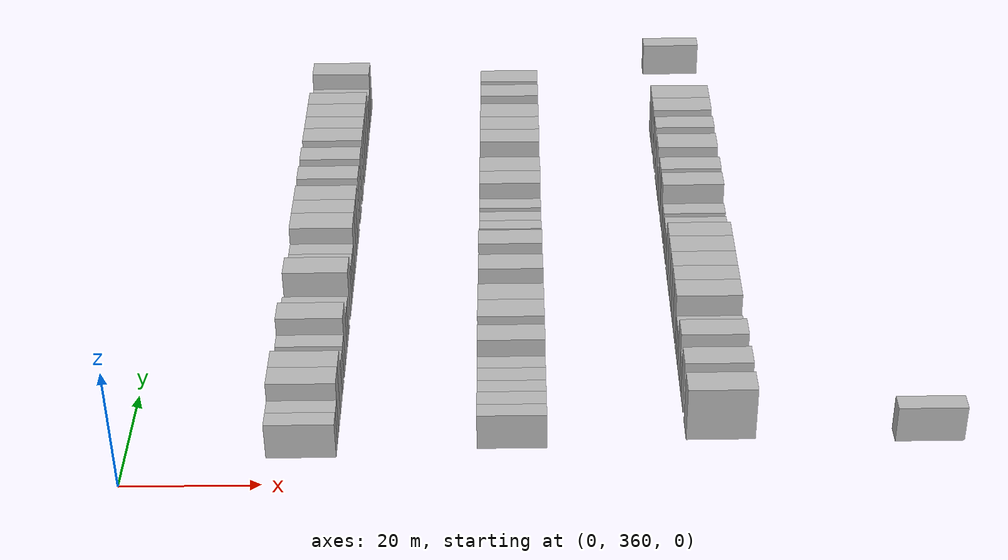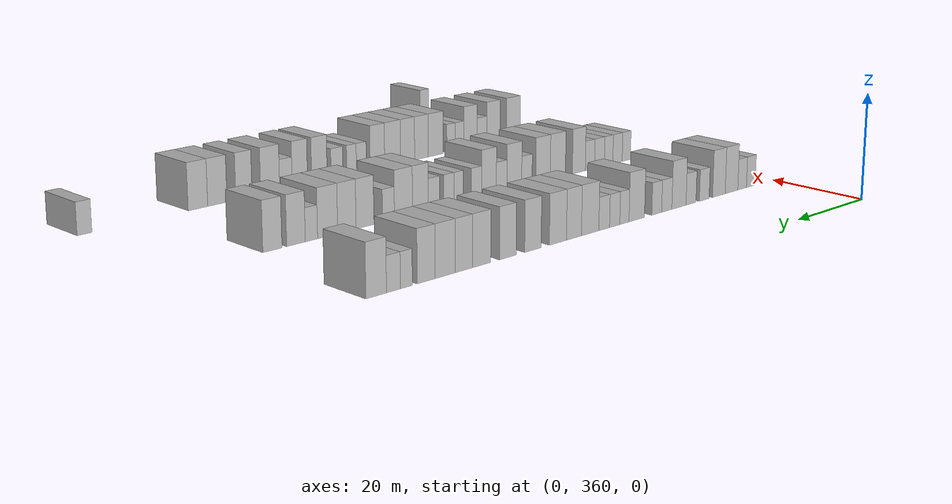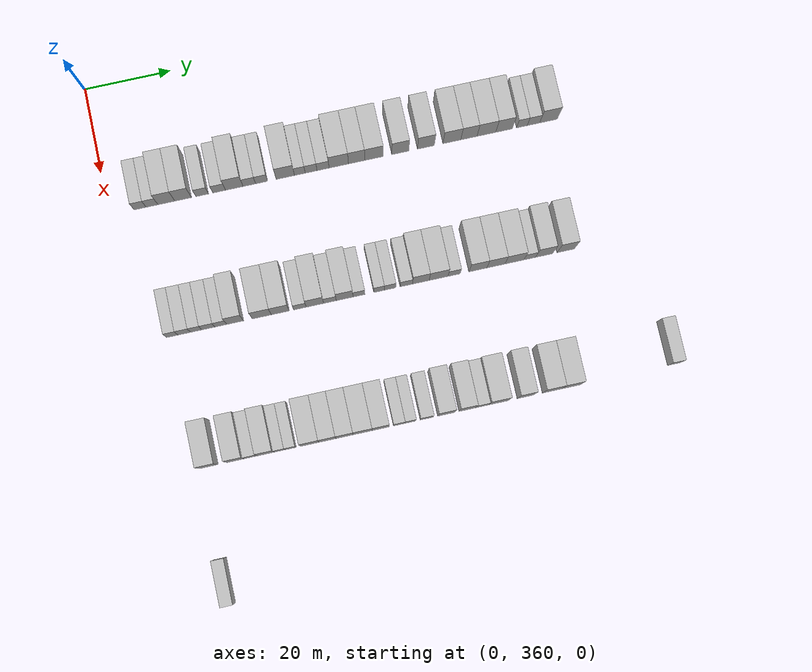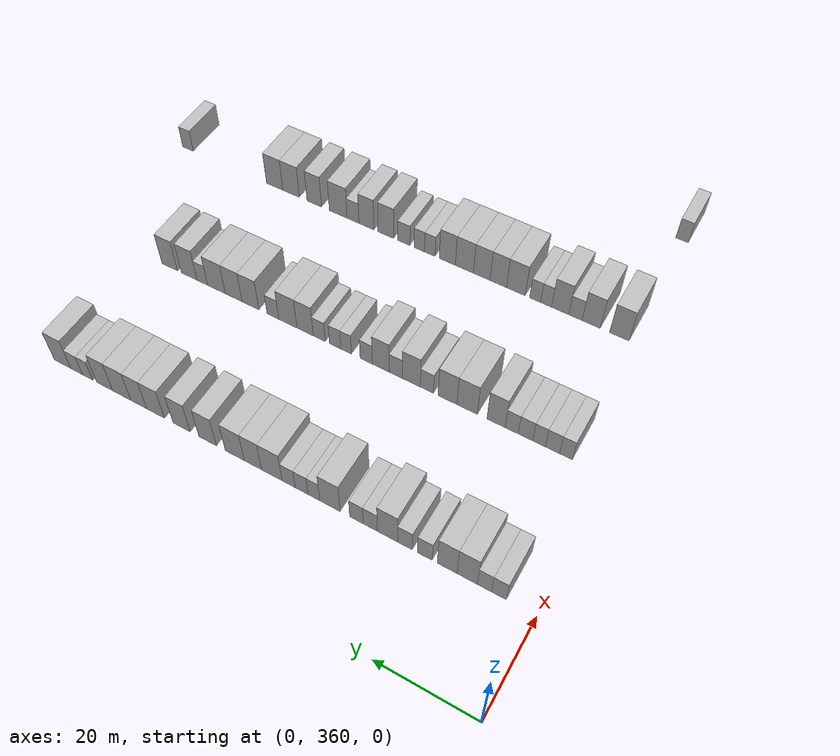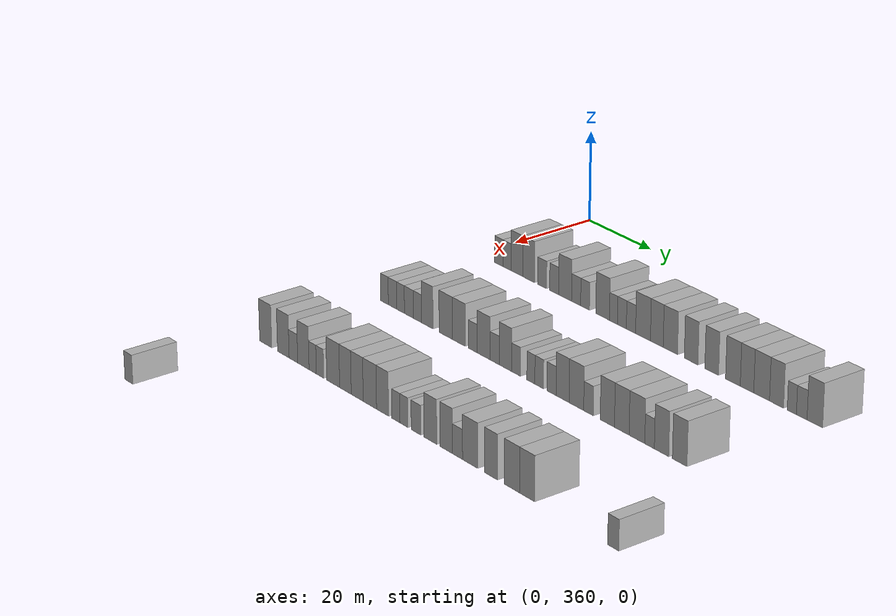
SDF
<sdf version="1.6">
 <world name="default">
  <model name="building_201">
   <static>1</static>
   <pose>25.0000 367.0895 0 0.000000 0.000000 0.000000</pose>
   <link name="link">
    <pose>0 0 3.00 0 0 0</pose>
    <collision name="collision"><geometry><box><size>10.0000 2.7691 6.0000</size></box></geometry></collision>
    <visual name="visual">
     <cast_shadows>0</cast_shadows>
     <geometry><box><size>10.0000 2.7691 6.0000</size></box></geometry>
     <material>
      <script>
       <uri>model://HANNAS_wall/materials/scripts</uri>
       <uri>model://HANNAS_wall/materials/textures</uri>
       <name>vrc/HANNAS_wall</name>
      </script>
     </material>
    </visual>
   </link>
  </model>
  <model name="building_202">
   <static>1</static>
   <pose>25.0000 369.8258 0 0.000000 0.000000 0.000000</pose>
   <link name="link">
    <pose>0 0 3.00 0 0 0</pose>
    <collision name="collision"><geometry><box><size>10.0000 2.7035 6.0000</size></box></geometry></collision>
    <visual name="visual">
     <cast_shadows>0</cast_shadows>
     <geometry><box><size>10.0000 2.7035 6.0000</size></box></geometry>
     <material>
      <script>
       <uri>model://HANNAS_wall/materials/scripts</uri>
       <uri>model://HANNAS_wall/materials/textures</uri>
       <name>vrc/HANNAS_wall</name>
      </script>
     </material>
    </visual>
   </link>
  </model>
  <model name="building_203">
   <static>1</static>
   <pose>25.0000 373.1202 0 0.000000 0.000000 0.000000</pose>
   <link name="link">
    <pose>0 0 4.50 0 0 0</pose>
    <collision name="collision"><geometry><box><size>10.0000 3.8852 9.0000</size></box></geometry></collision>
    <visual name="visual">
     <cast_shadows>0</cast_shadows>
     <geometry><box><size>10.0000 3.8852 9.0000</size></box></geometry>
     <material>
      <script>
       <uri>model://HANNAS_wall/materials/scripts</uri>
       <uri>model://HANNAS_wall/materials/textures</uri>
       <name>vrc/HANNAS_wall</name>
      </script>
     </material>
    </visual>
   </link>
  </model>
  <model name="building_204">
   <static>1</static>
   <pose>25.0000 376.9729 0 0.000000 0.000000 0.000000</pose>
   <link name="link">
    <pose>0 0 4.50 0 0 0</pose>
    <collision name="collision"><geometry><box><size>10.0000 3.8202 9.0000</size></box></geometry></collision>
    <visual name="visual">
     <cast_shadows>0</cast_shadows>
     <geometry><box><size>10.0000 3.8202 9.0000</size></box></geometry>
     <material>
      <script>
       <uri>model://HANNAS_wall/materials/scripts</uri>
       <uri>model://HANNAS_wall/materials/textures</uri>
       <name>vrc/HANNAS_wall</name>
      </script>
     </material>
    </visual>
   </link>
  </model>
  <model name="building_205">
   <static>1</static>
   <pose>25.0000 381.3362 0 0.000000 0.000000 0.000000</pose>
   <link name="link">
    <pose>0 0 3.00 0 0 0</pose>
    <collision name="collision"><geometry><box><size>10.0000 2.9065 6.0000</size></box></geometry></collision>
    <visual name="visual">
     <cast_shadows>0</cast_shadows>
     <geometry><box><size>10.0000 2.9065 6.0000</size></box></geometry>
     <material>
      <script>
       <uri>model://HANNAS_wall/materials/scripts</uri>
       <uri>model://HANNAS_wall/materials/textures</uri>
       <name>vrc/HANNAS_wall</name>
      </script>
     </material>
    </visual>
   </link>
  </model>
  <model name="building_206">
   <static>1</static>
   <pose>25.0000 385.2473 0 0.000000 0.000000 0.000000</pose>
   <link name="link">
    <pose>0 0 3.00 0 0 0</pose>
    <collision name="collision"><geometry><box><size>10.0000 2.9156 6.0000</size></box></geometry></collision>
    <visual name="visual">
     <cast_shadows>0</cast_shadows>
     <geometry><box><size>10.0000 2.9156 6.0000</size></box></geometry>
     <material>
      <script>
       <uri>model://HANNAS_wall/materials/scripts</uri>
       <uri>model://HANNAS_wall/materials/textures</uri>
       <name>vrc/HANNAS_wall</name>
      </script>
     </material>
    </visual>
   </link>
  </model>
  <model name="building_207">
   <static>1</static>
   <pose>25.0000 388.7373 0 0.000000 0.000000 0.000000</pose>
   <link name="link">
    <pose>0 0 4.50 0 0 0</pose>
    <collision name="collision"><geometry><box><size>10.0000 4.0645 9.0000</size></box></geometry></collision>
    <visual name="visual">
     <cast_shadows>0</cast_shadows>
     <geometry><box><size>10.0000 4.0645 9.0000</size></box></geometry>
     <material>
      <script>
       <uri>model://HANNAS_wall/materials/scripts</uri>
       <uri>model://HANNAS_wall/materials/textures</uri>
       <name>vrc/HANNAS_wall</name>
      </script>
     </material>
    </visual>
   </link>
  </model>
  <model name="building_208">
   <static>1</static>
   <pose>25.0000 392.2137 0 0.000000 0.000000 0.000000</pose>
   <link name="link">
    <pose>0 0 3.00 0 0 0</pose>
    <collision name="collision"><geometry><box><size>10.0000 2.8882 6.0000</size></box></geometry></collision>
    <visual name="visual">
     <cast_shadows>0</cast_shadows>
     <geometry><box><size>10.0000 2.8882 6.0000</size></box></geometry>
     <material>
      <script>
       <uri>model://HANNAS_wall/materials/scripts</uri>
       <uri>model://HANNAS_wall/materials/textures</uri>
       <name>vrc/HANNAS_wall</name>
      </script>
     </material>
    </visual>
   </link>
  </model>
  <model name="building_209">
   <static>1</static>
   <pose>25.0000 395.0371 0 0.000000 0.000000 0.000000</pose>
   <link name="link">
    <pose>0 0 3.00 0 0 0</pose>
    <collision name="collision"><geometry><box><size>10.0000 2.7587 6.0000</size></box></geometry></collision>
    <visual name="visual">
     <cast_shadows>0</cast_shadows>
     <geometry><box><size>10.0000 2.7587 6.0000</size></box></geometry>
     <material>
      <script>
       <uri>model://HANNAS_wall/materials/scripts</uri>
       <uri>model://HANNAS_wall/materials/textures</uri>
       <name>vrc/HANNAS_wall</name>
      </script>
     </material>
    </visual>
   </link>
  </model>
  <model name="building_210">
   <static>1</static>
   <pose>25.0000 400.5296 0 0.000000 0.000000 0.000000</pose>
   <link name="link">
    <pose>0 0 4.50 0 0 0</pose>
    <collision name="collision"><geometry><box><size>10.0000 4.2262 9.0000</size></box></geometry></collision>
    <visual name="visual">
     <cast_shadows>0</cast_shadows>
     <geometry><box><size>10.0000 4.2262 9.0000</size></box></geometry>
     <material>
      <script>
       <uri>model://HANNAS_wall/materials/scripts</uri>
       <uri>model://HANNAS_wall/materials/textures</uri>
       <name>vrc/HANNAS_wall</name>
      </script>
     </material>
    </visual>
   </link>
  </model>
  <model name="building_211">
   <static>1</static>
   <pose>25.0000 403.8722 0 0.000000 0.000000 0.000000</pose>
   <link name="link">
    <pose>0 0 3.00 0 0 0</pose>
    <collision name="collision"><geometry><box><size>10.0000 2.4590 6.0000</size></box></geometry></collision>
    <visual name="visual">
     <cast_shadows>0</cast_shadows>
     <geometry><box><size>10.0000 2.4590 6.0000</size></box></geometry>
     <material>
      <script>
       <uri>model://HANNAS_wall/materials/scripts</uri>
       <uri>model://HANNAS_wall/materials/textures</uri>
       <name>vrc/HANNAS_wall</name>
      </script>
     </material>
    </visual>
   </link>
  </model>
  <model name="building_212">
   <static>1</static>
   <pose>25.0000 406.4643 0 0.000000 0.000000 0.000000</pose>
   <link name="link">
    <pose>0 0 3.00 0 0 0</pose>
    <collision name="collision"><geometry><box><size>10.0000 2.7252 6.0000</size></box></geometry></collision>
    <visual name="visual">
     <cast_shadows>0</cast_shadows>
     <geometry><box><size>10.0000 2.7252 6.0000</size></box></geometry>
     <material>
      <script>
       <uri>model://HANNAS_wall/materials/scripts</uri>
       <uri>model://HANNAS_wall/materials/textures</uri>
       <name>vrc/HANNAS_wall</name>
      </script>
     </material>
    </visual>
   </link>
  </model>
  <model name="building_213">
   <static>1</static>
   <pose>25.0000 409.2296 0 0.000000 0.000000 0.000000</pose>
   <link name="link">
    <pose>0 0 3.00 0 0 0</pose>
    <collision name="collision"><geometry><box><size>10.0000 2.8054 6.0000</size></box></geometry></collision>
    <visual name="visual">
     <cast_shadows>0</cast_shadows>
     <geometry><box><size>10.0000 2.8054 6.0000</size></box></geometry>
     <material>
      <script>
       <uri>model://HANNAS_wall/materials/scripts</uri>
       <uri>model://HANNAS_wall/materials/textures</uri>
       <name>vrc/HANNAS_wall</name>
      </script>
     </material>
    </visual>
   </link>
  </model>
  <model name="building_214">
   <static>1</static>
   <pose>25.0000 412.8642 0 0.000000 0.000000 0.000000</pose>
   <link name="link">
    <pose>0 0 4.50 0 0 0</pose>
    <collision name="collision"><geometry><box><size>10.0000 4.4638 9.0000</size></box></geometry></collision>
    <visual name="visual">
     <cast_shadows>0</cast_shadows>
     <geometry><box><size>10.0000 4.4638 9.0000</size></box></geometry>
     <material>
      <script>
       <uri>model://HANNAS_wall/materials/scripts</uri>
       <uri>model://HANNAS_wall/materials/textures</uri>
       <name>vrc/HANNAS_wall</name>
      </script>
     </material>
    </visual>
   </link>
  </model>
  <model name="building_215">
   <static>1</static>
   <pose>25.0000 416.9933 0 0.000000 0.000000 0.000000</pose>
   <link name="link">
    <pose>0 0 4.50 0 0 0</pose>
    <collision name="collision"><geometry><box><size>10.0000 3.7944 9.0000</size></box></geometry></collision>
    <visual name="visual">
     <cast_shadows>0</cast_shadows>
     <geometry><box><size>10.0000 3.7944 9.0000</size></box></geometry>
     <material>
      <script>
       <uri>model://HANNAS_wall/materials/scripts</uri>
       <uri>model://HANNAS_wall/materials/textures</uri>
       <name>vrc/HANNAS_wall</name>
      </script>
     </material>
    </visual>
   </link>
  </model>
  <model name="building_216">
   <static>1</static>
   <pose>25.0000 421.0081 0 0.000000 0.000000 0.000000</pose>
   <link name="link">
    <pose>0 0 4.50 0 0 0</pose>
    <collision name="collision"><geometry><box><size>10.0000 4.2351 9.0000</size></box></geometry></collision>
    <visual name="visual">
     <cast_shadows>0</cast_shadows>
     <geometry><box><size>10.0000 4.2351 9.0000</size></box></geometry>
     <material>
      <script>
       <uri>model://HANNAS_wall/materials/scripts</uri>
       <uri>model://HANNAS_wall/materials/textures</uri>
       <name>vrc/HANNAS_wall</name>
      </script>
     </material>
    </visual>
   </link>
  </model>
  <model name="building_217">
   <static>1</static>
   <pose>25.0000 427.1038 0 0.000000 0.000000 0.000000</pose>
   <link name="link">
    <pose>0 0 4.50 0 0 0</pose>
    <collision name="collision"><geometry><box><size>10.0000 3.9564 9.0000</size></box></geometry></collision>
    <visual name="visual">
     <cast_shadows>0</cast_shadows>
     <geometry><box><size>10.0000 3.9564 9.0000</size></box></geometry>
     <material>
      <script>
       <uri>model://HANNAS_wall/materials/scripts</uri>
       <uri>model://HANNAS_wall/materials/textures</uri>
       <name>vrc/HANNAS_wall</name>
      </script>
     </material>
    </visual>
   </link>
  </model>
  <model name="building_218">
   <static>1</static>
   <pose>25.0000 433.0484 0 0.000000 0.000000 0.000000</pose>
   <link name="link">
    <pose>0 0 4.50 0 0 0</pose>
    <collision name="collision"><geometry><box><size>10.0000 3.9329 9.0000</size></box></geometry></collision>
    <visual name="visual">
     <cast_shadows>0</cast_shadows>
     <geometry><box><size>10.0000 3.9329 9.0000</size></box></geometry>
     <material>
      <script>
       <uri>model://HANNAS_wall/materials/scripts</uri>
       <uri>model://HANNAS_wall/materials/textures</uri>
       <name>vrc/HANNAS_wall</name>
      </script>
     </material>
    </visual>
   </link>
  </model>
  <model name="building_219">
   <static>1</static>
   <pose>25.0000 439.0929 0 0.000000 0.000000 0.000000</pose>
   <link name="link">
    <pose>0 0 4.50 0 0 0</pose>
    <collision name="collision"><geometry><box><size>10.0000 4.1560 9.0000</size></box></geometry></collision>
    <visual name="visual">
     <cast_shadows>0</cast_shadows>
     <geometry><box><size>10.0000 4.1560 9.0000</size></box></geometry>
     <material>
      <script>
       <uri>model://HANNAS_wall/materials/scripts</uri>
       <uri>model://HANNAS_wall/materials/textures</uri>
       <name>vrc/HANNAS_wall</name>
      </script>
     </material>
    </visual>
   </link>
  </model>
  <model name="building_220">
   <static>1</static>
   <pose>25.0000 443.0553 0 0.000000 0.000000 0.000000</pose>
   <link name="link">
    <pose>0 0 4.50 0 0 0</pose>
    <collision name="collision"><geometry><box><size>10.0000 3.7687 9.0000</size></box></geometry></collision>
    <visual name="visual">
     <cast_shadows>0</cast_shadows>
     <geometry><box><size>10.0000 3.7687 9.0000</size></box></geometry>
     <material>
      <script>
       <uri>model://HANNAS_wall/materials/scripts</uri>
       <uri>model://HANNAS_wall/materials/textures</uri>
       <name>vrc/HANNAS_wall</name>
      </script>
     </material>
    </visual>
   </link>
  </model>
  <model name="building_221">
   <static>1</static>
   <pose>25.0000 447.1258 0 0.000000 0.000000 0.000000</pose>
   <link name="link">
    <pose>0 0 4.50 0 0 0</pose>
    <collision name="collision"><geometry><box><size>10.0000 4.3723 9.0000</size></box></geometry></collision>
    <visual name="visual">
     <cast_shadows>0</cast_shadows>
     <geometry><box><size>10.0000 4.3723 9.0000</size></box></geometry>
     <material>
      <script>
       <uri>model://HANNAS_wall/materials/scripts</uri>
       <uri>model://HANNAS_wall/materials/textures</uri>
       <name>vrc/HANNAS_wall</name>
      </script>
     </material>
    </visual>
   </link>
  </model>
  <model name="building_222">
   <static>1</static>
   <pose>25.0000 451.2406 0 0.000000 0.000000 0.000000</pose>
   <link name="link">
    <pose>0 0 4.50 0 0 0</pose>
    <collision name="collision"><geometry><box><size>10.0000 3.8573 9.0000</size></box></geometry></collision>
    <visual name="visual">
     <cast_shadows>0</cast_shadows>
     <geometry><box><size>10.0000 3.8573 9.0000</size></box></geometry>
     <material>
      <script>
       <uri>model://HANNAS_wall/materials/scripts</uri>
       <uri>model://HANNAS_wall/materials/textures</uri>
       <name>vrc/HANNAS_wall</name>
      </script>
     </material>
    </visual>
   </link>
  </model>
  <model name="building_223">
   <static>1</static>
   <pose>25.0000 455.4126 0 0.000000 0.000000 0.000000</pose>
   <link name="link">
    <pose>0 0 3.00 0 0 0</pose>
    <collision name="collision"><geometry><box><size>10.0000 2.4866 6.0000</size></box></geometry></collision>
    <visual name="visual">
     <cast_shadows>0</cast_shadows>
     <geometry><box><size>10.0000 2.4866 6.0000</size></box></geometry>
     <material>
      <script>
       <uri>model://HANNAS_wall/materials/scripts</uri>
       <uri>model://HANNAS_wall/materials/textures</uri>
       <name>vrc/HANNAS_wall</name>
      </script>
     </material>
    </visual>
   </link>
  </model>
  <model name="building_224">
   <static>1</static>
   <pose>25.0000 458.0888 0 0.000000 0.000000 0.000000</pose>
   <link name="link">
    <pose>0 0 3.00 0 0 0</pose>
    <collision name="collision"><geometry><box><size>10.0000 2.8658 6.0000</size></box></geometry></collision>
    <visual name="visual">
     <cast_shadows>0</cast_shadows>
     <geometry><box><size>10.0000 2.8658 6.0000</size></box></geometry>
     <material>
      <script>
       <uri>model://HANNAS_wall/materials/scripts</uri>
       <uri>model://HANNAS_wall/materials/textures</uri>
       <name>vrc/HANNAS_wall</name>
      </script>
     </material>
    </visual>
   </link>
  </model>
  <model name="building_225">
   <static>1</static>
   <pose>25.0000 461.5999 0 0.000000 0.000000 0.000000</pose>
   <link name="link">
    <pose>0 0 4.50 0 0 0</pose>
    <collision name="collision"><geometry><box><size>10.0000 4.1564 9.0000</size></box></geometry></collision>
    <visual name="visual">
     <cast_shadows>0</cast_shadows>
     <geometry><box><size>10.0000 4.1564 9.0000</size></box></geometry>
     <material>
      <script>
       <uri>model://HANNAS_wall/materials/scripts</uri>
       <uri>model://HANNAS_wall/materials/textures</uri>
       <name>vrc/HANNAS_wall</name>
      </script>
     </material>
    </visual>
   </link>
  </model>
  <model name="building_439">
   <static>1</static>
   <pose>55.0000 368.5275 0 0.000000 0.000000 0.000000</pose>
   <link name="link">
    <pose>0 0 3.00 0 0 0</pose>
    <collision name="collision"><geometry><box><size>10.0000 2.5857 6.0000</size></box></geometry></collision>
    <visual name="visual">
     <cast_shadows>0</cast_shadows>
     <geometry><box><size>10.0000 2.5857 6.0000</size></box></geometry>
     <material>
      <script>
       <uri>model://HANNAS_wall/materials/scripts</uri>
       <uri>model://HANNAS_wall/materials/textures</uri>
       <name>vrc/HANNAS_wall</name>
      </script>
     </material>
    </visual>
   </link>
  </model>
  <model name="building_440">
   <static>1</static>
   <pose>55.0000 371.2605 0 0.000000 0.000000 0.000000</pose>
   <link name="link">
    <pose>0 0 3.00 0 0 0</pose>
    <collision name="collision"><geometry><box><size>10.0000 2.8802 6.0000</size></box></geometry></collision>
    <visual name="visual">
     <cast_shadows>0</cast_shadows>
     <geometry><box><size>10.0000 2.8802 6.0000</size></box></geometry>
     <material>
      <script>
       <uri>model://HANNAS_wall/materials/scripts</uri>
       <uri>model://HANNAS_wall/materials/textures</uri>
       <name>vrc/HANNAS_wall</name>
      </script>
     </material>
    </visual>
   </link>
  </model>
  <model name="building_441">
   <static>1</static>
   <pose>55.0000 373.9763 0 0.000000 0.000000 0.000000</pose>
   <link name="link">
    <pose>0 0 3.00 0 0 0</pose>
    <collision name="collision"><geometry><box><size>10.0000 2.5512 6.0000</size></box></geometry></collision>
    <visual name="visual">
     <cast_shadows>0</cast_shadows>
     <geometry><box><size>10.0000 2.5512 6.0000</size></box></geometry>
     <material>
      <script>
       <uri>model://HANNAS_wall/materials/scripts</uri>
       <uri>model://HANNAS_wall/materials/textures</uri>
       <name>vrc/HANNAS_wall</name>
      </script>
     </material>
    </visual>
   </link>
  </model>
  <model name="building_442">
   <static>1</static>
   <pose>55.0000 376.7266 0 0.000000 0.000000 0.000000</pose>
   <link name="link">
    <pose>0 0 3.00 0 0 0</pose>
    <collision name="collision"><geometry><box><size>10.0000 2.9494 6.0000</size></box></geometry></collision>
    <visual name="visual">
     <cast_shadows>0</cast_shadows>
     <geometry><box><size>10.0000 2.9494 6.0000</size></box></geometry>
     <material>
      <script>
       <uri>model://HANNAS_wall/materials/scripts</uri>
       <uri>model://HANNAS_wall/materials/textures</uri>
       <name>vrc/HANNAS_wall</name>
      </script>
     </material>
    </visual>
   </link>
  </model>
  <model name="building_443">
   <static>1</static>
   <pose>55.0000 379.5592 0 0.000000 0.000000 0.000000</pose>
   <link name="link">
    <pose>0 0 3.00 0 0 0</pose>
    <collision name="collision"><geometry><box><size>10.0000 2.7159 6.0000</size></box></geometry></collision>
    <visual name="visual">
     <cast_shadows>0</cast_shadows>
     <geometry><box><size>10.0000 2.7159 6.0000</size></box></geometry>
     <material>
      <script>
       <uri>model://HANNAS_wall/materials/scripts</uri>
       <uri>model://HANNAS_wall/materials/textures</uri>
       <name>vrc/HANNAS_wall</name>
      </script>
     </material>
    </visual>
   </link>
  </model>
  <model name="building_444">
   <static>1</static>
   <pose>55.0000 382.8149 0 0.000000 0.000000 0.000000</pose>
   <link name="link">
    <pose>0 0 4.50 0 0 0</pose>
    <collision name="collision"><geometry><box><size>10.0000 3.7955 9.0000</size></box></geometry></collision>
    <visual name="visual">
     <cast_shadows>0</cast_shadows>
     <geometry><box><size>10.0000 3.7955 9.0000</size></box></geometry>
     <material>
      <script>
       <uri>model://HANNAS_wall/materials/scripts</uri>
       <uri>model://HANNAS_wall/materials/textures</uri>
       <name>vrc/HANNAS_wall</name>
      </script>
     </material>
    </visual>
   </link>
  </model>
  <model name="building_445">
   <static>1</static>
   <pose>55.0000 388.8805 0 0.000000 0.000000 0.000000</pose>
   <link name="link">
    <pose>0 0 4.50 0 0 0</pose>
    <collision name="collision"><geometry><box><size>10.0000 4.3356 9.0000</size></box></geometry></collision>
    <visual name="visual">
     <cast_shadows>0</cast_shadows>
     <geometry><box><size>10.0000 4.3356 9.0000</size></box></geometry>
     <material>
      <script>
       <uri>model://HANNAS_wall/materials/scripts</uri>
       <uri>model://HANNAS_wall/materials/textures</uri>
       <name>vrc/HANNAS_wall</name>
      </script>
     </material>
    </visual>
   </link>
  </model>
  <model name="building_446">
   <static>1</static>
   <pose>55.0000 393.0861 0 0.000000 0.000000 0.000000</pose>
   <link name="link">
    <pose>0 0 4.50 0 0 0</pose>
    <collision name="collision"><geometry><box><size>10.0000 4.0756 9.0000</size></box></geometry></collision>
    <visual name="visual">
     <cast_shadows>0</cast_shadows>
     <geometry><box><size>10.0000 4.0756 9.0000</size></box></geometry>
     <material>
      <script>
       <uri>model://HANNAS_wall/materials/scripts</uri>
       <uri>model://HANNAS_wall/materials/textures</uri>
       <name>vrc/HANNAS_wall</name>
      </script>
     </material>
    </visual>
   </link>
  </model>
  <model name="building_447">
   <static>1</static>
   <pose>55.0000 397.5530 0 0.000000 0.000000 0.000000</pose>
   <link name="link">
    <pose>0 0 3.00 0 0 0</pose>
    <collision name="collision"><geometry><box><size>10.0000 2.8581 6.0000</size></box></geometry></collision>
    <visual name="visual">
     <cast_shadows>0</cast_shadows>
     <geometry><box><size>10.0000 2.8581 6.0000</size></box></geometry>
     <material>
      <script>
       <uri>model://HANNAS_wall/materials/scripts</uri>
       <uri>model://HANNAS_wall/materials/textures</uri>
       <name>vrc/HANNAS_wall</name>
      </script>
     </material>
    </visual>
   </link>
  </model>
  <model name="building_448">
   <static>1</static>
   <pose>55.0000 400.9636 0 0.000000 0.000000 0.000000</pose>
   <link name="link">
    <pose>0 0 4.50 0 0 0</pose>
    <collision name="collision"><geometry><box><size>10.0000 3.9631 9.0000</size></box></geometry></collision>
    <visual name="visual">
     <cast_shadows>0</cast_shadows>
     <geometry><box><size>10.0000 3.9631 9.0000</size></box></geometry>
     <material>
      <script>
       <uri>model://HANNAS_wall/materials/scripts</uri>
       <uri>model://HANNAS_wall/materials/textures</uri>
       <name>vrc/HANNAS_wall</name>
      </script>
     </material>
    </visual>
   </link>
  </model>
  <model name="building_449">
   <static>1</static>
   <pose>55.0000 404.3778 0 0.000000 0.000000 0.000000</pose>
   <link name="link">
    <pose>0 0 3.00 0 0 0</pose>
    <collision name="collision"><geometry><box><size>10.0000 2.8653 6.0000</size></box></geometry></collision>
    <visual name="visual">
     <cast_shadows>0</cast_shadows>
     <geometry><box><size>10.0000 2.8653 6.0000</size></box></geometry>
     <material>
      <script>
       <uri>model://HANNAS_wall/materials/scripts</uri>
       <uri>model://HANNAS_wall/materials/textures</uri>
       <name>vrc/HANNAS_wall</name>
      </script>
     </material>
    </visual>
   </link>
  </model>
  <model name="building_450">
   <static>1</static>
   <pose>55.0000 407.7304 0 0.000000 0.000000 0.000000</pose>
   <link name="link">
    <pose>0 0 4.50 0 0 0</pose>
    <collision name="collision"><geometry><box><size>10.0000 3.8399 9.0000</size></box></geometry></collision>
    <visual name="visual">
     <cast_shadows>0</cast_shadows>
     <geometry><box><size>10.0000 3.8399 9.0000</size></box></geometry>
     <material>
      <script>
       <uri>model://HANNAS_wall/materials/scripts</uri>
       <uri>model://HANNAS_wall/materials/textures</uri>
       <name>vrc/HANNAS_wall</name>
      </script>
     </material>
    </visual>
   </link>
  </model>
  <model name="building_451">
   <static>1</static>
   <pose>55.0000 411.0141 0 0.000000 0.000000 0.000000</pose>
   <link name="link">
    <pose>0 0 3.00 0 0 0</pose>
    <collision name="collision"><geometry><box><size>10.0000 2.7274 6.0000</size></box></geometry></collision>
    <visual name="visual">
     <cast_shadows>0</cast_shadows>
     <geometry><box><size>10.0000 2.7274 6.0000</size></box></geometry>
     <material>
      <script>
       <uri>model://HANNAS_wall/materials/scripts</uri>
       <uri>model://HANNAS_wall/materials/textures</uri>
       <name>vrc/HANNAS_wall</name>
      </script>
     </material>
    </visual>
   </link>
  </model>
  <model name="building_452">
   <static>1</static>
   <pose>55.0000 415.5920 0 0.000000 0.000000 0.000000</pose>
   <link name="link">
    <pose>0 0 3.00 0 0 0</pose>
    <collision name="collision"><geometry><box><size>10.0000 2.4283 6.0000</size></box></geometry></collision>
    <visual name="visual">
     <cast_shadows>0</cast_shadows>
     <geometry><box><size>10.0000 2.4283 6.0000</size></box></geometry>
     <material>
      <script>
       <uri>model://HANNAS_wall/materials/scripts</uri>
       <uri>model://HANNAS_wall/materials/textures</uri>
       <name>vrc/HANNAS_wall</name>
      </script>
     </material>
    </visual>
   </link>
  </model>
  <model name="building_453">
   <static>1</static>
   <pose>55.0000 418.1030 0 0.000000 0.000000 0.000000</pose>
   <link name="link">
    <pose>0 0 3.00 0 0 0</pose>
    <collision name="collision"><geometry><box><size>10.0000 2.5936 6.0000</size></box></geometry></collision>
    <visual name="visual">
     <cast_shadows>0</cast_shadows>
     <geometry><box><size>10.0000 2.5936 6.0000</size></box></geometry>
     <material>
      <script>
       <uri>model://HANNAS_wall/materials/scripts</uri>
       <uri>model://HANNAS_wall/materials/textures</uri>
       <name>vrc/HANNAS_wall</name>
      </script>
     </material>
    </visual>
   </link>
  </model>
  <model name="building_454">
   <static>1</static>
   <pose>55.0000 421.7958 0 0.000000 0.000000 0.000000</pose>
   <link name="link">
    <pose>0 0 3.00 0 0 0</pose>
    <collision name="collision"><geometry><box><size>10.0000 2.7922 6.0000</size></box></geometry></collision>
    <visual name="visual">
     <cast_shadows>0</cast_shadows>
     <geometry><box><size>10.0000 2.7922 6.0000</size></box></geometry>
     <material>
      <script>
       <uri>model://HANNAS_wall/materials/scripts</uri>
       <uri>model://HANNAS_wall/materials/textures</uri>
       <name>vrc/HANNAS_wall</name>
      </script>
     </material>
    </visual>
   </link>
  </model>
  <model name="building_455">
   <static>1</static>
   <pose>55.0000 425.1138 0 0.000000 0.000000 0.000000</pose>
   <link name="link">
    <pose>0 0 4.50 0 0 0</pose>
    <collision name="collision"><geometry><box><size>10.0000 3.8437 9.0000</size></box></geometry></collision>
    <visual name="visual">
     <cast_shadows>0</cast_shadows>
     <geometry><box><size>10.0000 3.8437 9.0000</size></box></geometry>
     <material>
      <script>
       <uri>model://HANNAS_wall/materials/scripts</uri>
       <uri>model://HANNAS_wall/materials/textures</uri>
       <name>vrc/HANNAS_wall</name>
      </script>
     </material>
    </visual>
   </link>
  </model>
  <model name="building_456">
   <static>1</static>
   <pose>55.0000 429.1933 0 0.000000 0.000000 0.000000</pose>
   <link name="link">
    <pose>0 0 4.50 0 0 0</pose>
    <collision name="collision"><geometry><box><size>10.0000 4.3153 9.0000</size></box></geometry></collision>
    <visual name="visual">
     <cast_shadows>0</cast_shadows>
     <geometry><box><size>10.0000 4.3153 9.0000</size></box></geometry>
     <material>
      <script>
       <uri>model://HANNAS_wall/materials/scripts</uri>
       <uri>model://HANNAS_wall/materials/textures</uri>
       <name>vrc/HANNAS_wall</name>
      </script>
     </material>
    </visual>
   </link>
  </model>
  <model name="building_457">
   <static>1</static>
   <pose>55.0000 432.7564 0 0.000000 0.000000 0.000000</pose>
   <link name="link">
    <pose>0 0 3.00 0 0 0</pose>
    <collision name="collision"><geometry><box><size>10.0000 2.8109 6.0000</size></box></geometry></collision>
    <visual name="visual">
     <cast_shadows>0</cast_shadows>
     <geometry><box><size>10.0000 2.8109 6.0000</size></box></geometry>
     <material>
      <script>
       <uri>model://HANNAS_wall/materials/scripts</uri>
       <uri>model://HANNAS_wall/materials/textures</uri>
       <name>vrc/HANNAS_wall</name>
      </script>
     </material>
    </visual>
   </link>
  </model>
  <model name="building_458">
   <static>1</static>
   <pose>55.0000 438.2065 0 0.000000 0.000000 0.000000</pose>
   <link name="link">
    <pose>0 0 4.50 0 0 0</pose>
    <collision name="collision"><geometry><box><size>10.0000 4.0894 9.0000</size></box></geometry></collision>
    <visual name="visual">
     <cast_shadows>0</cast_shadows>
     <geometry><box><size>10.0000 4.0894 9.0000</size></box></geometry>
     <material>
      <script>
       <uri>model://HANNAS_wall/materials/scripts</uri>
       <uri>model://HANNAS_wall/materials/textures</uri>
       <name>vrc/HANNAS_wall</name>
      </script>
     </material>
    </visual>
   </link>
  </model>
  <model name="building_459">
   <static>1</static>
   <pose>55.0000 442.3290 0 0.000000 0.000000 0.000000</pose>
   <link name="link">
    <pose>0 0 4.50 0 0 0</pose>
    <collision name="collision"><geometry><box><size>10.0000 4.1556 9.0000</size></box></geometry></collision>
    <visual name="visual">
     <cast_shadows>0</cast_shadows>
     <geometry><box><size>10.0000 4.1556 9.0000</size></box></geometry>
     <material>
      <script>
       <uri>model://HANNAS_wall/materials/scripts</uri>
       <uri>model://HANNAS_wall/materials/textures</uri>
       <name>vrc/HANNAS_wall</name>
      </script>
     </material>
    </visual>
   </link>
  </model>
  <model name="building_460">
   <static>1</static>
   <pose>55.0000 446.6150 0 0.000000 0.000000 0.000000</pose>
   <link name="link">
    <pose>0 0 4.50 0 0 0</pose>
    <collision name="collision"><geometry><box><size>10.0000 4.4163 9.0000</size></box></geometry></collision>
    <visual name="visual">
     <cast_shadows>0</cast_shadows>
     <geometry><box><size>10.0000 4.4163 9.0000</size></box></geometry>
     <material>
      <script>
       <uri>model://HANNAS_wall/materials/scripts</uri>
       <uri>model://HANNAS_wall/materials/textures</uri>
       <name>vrc/HANNAS_wall</name>
      </script>
     </material>
    </visual>
   </link>
  </model>
  <model name="building_461">
   <static>1</static>
   <pose>55.0000 450.1556 0 0.000000 0.000000 0.000000</pose>
   <link name="link">
    <pose>0 0 3.00 0 0 0</pose>
    <collision name="collision"><geometry><box><size>10.0000 2.6649 6.0000</size></box></geometry></collision>
    <visual name="visual">
     <cast_shadows>0</cast_shadows>
     <geometry><box><size>10.0000 2.6649 6.0000</size></box></geometry>
     <material>
      <script>
       <uri>model://HANNAS_wall/materials/scripts</uri>
       <uri>model://HANNAS_wall/materials/textures</uri>
       <name>vrc/HANNAS_wall</name>
      </script>
     </material>
    </visual>
   </link>
  </model>
  <model name="building_462">
   <static>1</static>
   <pose>55.0000 453.4748 0 0.000000 0.000000 0.000000</pose>
   <link name="link">
    <pose>0 0 4.50 0 0 0</pose>
    <collision name="collision"><geometry><box><size>10.0000 3.9736 9.0000</size></box></geometry></collision>
    <visual name="visual">
     <cast_shadows>0</cast_shadows>
     <geometry><box><size>10.0000 3.9736 9.0000</size></box></geometry>
     <material>
      <script>
       <uri>model://HANNAS_wall/materials/scripts</uri>
       <uri>model://HANNAS_wall/materials/textures</uri>
       <name>vrc/HANNAS_wall</name>
      </script>
     </material>
    </visual>
   </link>
  </model>
  <model name="building_463">
   <static>1</static>
   <pose>55.0000 458.4568 0 0.000000 0.000000 0.000000</pose>
   <link name="link">
    <pose>0 0 4.50 0 0 0</pose>
    <collision name="collision"><geometry><box><size>10.0000 3.9904 9.0000</size></box></geometry></collision>
    <visual name="visual">
     <cast_shadows>0</cast_shadows>
     <geometry><box><size>10.0000 3.9904 9.0000</size></box></geometry>
     <material>
      <script>
       <uri>model://HANNAS_wall/materials/scripts</uri>
       <uri>model://HANNAS_wall/materials/textures</uri>
       <name>vrc/HANNAS_wall</name>
      </script>
     </material>
    </visual>
   </link>
  </model>
  <model name="building_660">
   <static>1</static>
   <pose>85.0000 370.7355 0 0.000000 0.000000 0.000000</pose>
   <link name="link">
    <pose>0 0 4.50 0 0 0</pose>
    <collision name="collision"><geometry><box><size>10.0000 4.1682 9.0000</size></box></geometry></collision>
    <visual name="visual">
     <cast_shadows>0</cast_shadows>
     <geometry><box><size>10.0000 4.1682 9.0000</size></box></geometry>
     <material>
      <script>
       <uri>model://HANNAS_wall/materials/scripts</uri>
       <uri>model://HANNAS_wall/materials/textures</uri>
       <name>vrc/HANNAS_wall</name>
      </script>
     </material>
    </visual>
   </link>
  </model>
  <model name="building_661">
   <static>1</static>
   <pose>85.0000 376.7916 0 0.000000 0.000000 0.000000</pose>
   <link name="link">
    <pose>0 0 4.50 0 0 0</pose>
    <collision name="collision"><geometry><box><size>10.0000 3.9441 9.0000</size></box></geometry></collision>
    <visual name="visual">
     <cast_shadows>0</cast_shadows>
     <geometry><box><size>10.0000 3.9441 9.0000</size></box></geometry>
     <material>
      <script>
       <uri>model://HANNAS_wall/materials/scripts</uri>
       <uri>model://HANNAS_wall/materials/textures</uri>
       <name>vrc/HANNAS_wall</name>
      </script>
     </material>
    </visual>
   </link>
  </model>
  <model name="building_662">
   <static>1</static>
   <pose>85.0000 380.2147 0 0.000000 0.000000 0.000000</pose>
   <link name="link">
    <pose>0 0 3.00 0 0 0</pose>
    <collision name="collision"><geometry><box><size>10.0000 2.9020 6.0000</size></box></geometry></collision>
    <visual name="visual">
     <cast_shadows>0</cast_shadows>
     <geometry><box><size>10.0000 2.9020 6.0000</size></box></geometry>
     <material>
      <script>
       <uri>model://HANNAS_wall/materials/scripts</uri>
       <uri>model://HANNAS_wall/materials/textures</uri>
       <name>vrc/HANNAS_wall</name>
      </script>
     </material>
    </visual>
   </link>
  </model>
  <model name="building_663">
   <static>1</static>
   <pose>85.0000 383.5723 0 0.000000 0.000000 0.000000</pose>
   <link name="link">
    <pose>0 0 4.50 0 0 0</pose>
    <collision name="collision"><geometry><box><size>10.0000 3.8132 9.0000</size></box></geometry></collision>
    <visual name="visual">
     <cast_shadows>0</cast_shadows>
     <geometry><box><size>10.0000 3.8132 9.0000</size></box></geometry>
     <material>
      <script>
       <uri>model://HANNAS_wall/materials/scripts</uri>
       <uri>model://HANNAS_wall/materials/textures</uri>
       <name>vrc/HANNAS_wall</name>
      </script>
     </material>
    </visual>
   </link>
  </model>
  <model name="building_664">
   <static>1</static>
   <pose>85.0000 386.6936 0 0.000000 0.000000 0.000000</pose>
   <link name="link">
    <pose>0 0 3.00 0 0 0</pose>
    <collision name="collision"><geometry><box><size>10.0000 2.4295 6.0000</size></box></geometry></collision>
    <visual name="visual">
     <cast_shadows>0</cast_shadows>
     <geometry><box><size>10.0000 2.4295 6.0000</size></box></geometry>
     <material>
      <script>
       <uri>model://HANNAS_wall/materials/scripts</uri>
       <uri>model://HANNAS_wall/materials/textures</uri>
       <name>vrc/HANNAS_wall</name>
      </script>
     </material>
    </visual>
   </link>
  </model>
  <model name="building_665">
   <static>1</static>
   <pose>85.0000 389.1313 0 0.000000 0.000000 0.000000</pose>
   <link name="link">
    <pose>0 0 3.00 0 0 0</pose>
    <collision name="collision"><geometry><box><size>10.0000 2.4458 6.0000</size></box></geometry></collision>
    <visual name="visual">
     <cast_shadows>0</cast_shadows>
     <geometry><box><size>10.0000 2.4458 6.0000</size></box></geometry>
     <material>
      <script>
       <uri>model://HANNAS_wall/materials/scripts</uri>
       <uri>model://HANNAS_wall/materials/textures</uri>
       <name>vrc/HANNAS_wall</name>
      </script>
     </material>
    </visual>
   </link>
  </model>
  <model name="building_666">
   <static>1</static>
   <pose>85.0000 393.4674 0 0.000000 0.000000 0.000000</pose>
   <link name="link">
    <pose>0 0 4.50 0 0 0</pose>
    <collision name="collision"><geometry><box><size>10.0000 4.2263 9.0000</size></box></geometry></collision>
    <visual name="visual">
     <cast_shadows>0</cast_shadows>
     <geometry><box><size>10.0000 4.2263 9.0000</size></box></geometry>
     <material>
      <script>
       <uri>model://HANNAS_wall/materials/scripts</uri>
       <uri>model://HANNAS_wall/materials/textures</uri>
       <name>vrc/HANNAS_wall</name>
      </script>
     </material>
    </visual>
   </link>
  </model>
  <model name="building_667">
   <static>1</static>
   <pose>85.0000 397.4630 0 0.000000 0.000000 0.000000</pose>
   <link name="link">
    <pose>0 0 4.50 0 0 0</pose>
    <collision name="collision"><geometry><box><size>10.0000 3.7649 9.0000</size></box></geometry></collision>
    <visual name="visual">
     <cast_shadows>0</cast_shadows>
     <geometry><box><size>10.0000 3.7649 9.0000</size></box></geometry>
     <material>
      <script>
       <uri>model://HANNAS_wall/materials/scripts</uri>
       <uri>model://HANNAS_wall/materials/textures</uri>
       <name>vrc/HANNAS_wall</name>
      </script>
     </material>
    </visual>
   </link>
  </model>
  <model name="building_668">
   <static>1</static>
   <pose>85.0000 401.2684 0 0.000000 0.000000 0.000000</pose>
   <link name="link">
    <pose>0 0 4.50 0 0 0</pose>
    <collision name="collision"><geometry><box><size>10.0000 3.8459 9.0000</size></box></geometry></collision>
    <visual name="visual">
     <cast_shadows>0</cast_shadows>
     <geometry><box><size>10.0000 3.8459 9.0000</size></box></geometry>
     <material>
      <script>
       <uri>model://HANNAS_wall/materials/scripts</uri>
       <uri>model://HANNAS_wall/materials/textures</uri>
       <name>vrc/HANNAS_wall</name>
      </script>
     </material>
    </visual>
   </link>
  </model>
  <model name="building_669">
   <static>1</static>
   <pose>85.0000 405.3101 0 0.000000 0.000000 0.000000</pose>
   <link name="link">
    <pose>0 0 4.50 0 0 0</pose>
    <collision name="collision"><geometry><box><size>10.0000 4.2375 9.0000</size></box></geometry></collision>
    <visual name="visual">
     <cast_shadows>0</cast_shadows>
     <geometry><box><size>10.0000 4.2375 9.0000</size></box></geometry>
     <material>
      <script>
       <uri>model://HANNAS_wall/materials/scripts</uri>
       <uri>model://HANNAS_wall/materials/textures</uri>
       <name>vrc/HANNAS_wall</name>
      </script>
     </material>
    </visual>
   </link>
  </model>
  <model name="building_670">
   <static>1</static>
   <pose>85.0000 409.3315 0 0.000000 0.000000 0.000000</pose>
   <link name="link">
    <pose>0 0 4.50 0 0 0</pose>
    <collision name="collision"><geometry><box><size>10.0000 3.8054 9.0000</size></box></geometry></collision>
    <visual name="visual">
     <cast_shadows>0</cast_shadows>
     <geometry><box><size>10.0000 3.8054 9.0000</size></box></geometry>
     <material>
      <script>
       <uri>model://HANNAS_wall/materials/scripts</uri>
       <uri>model://HANNAS_wall/materials/textures</uri>
       <name>vrc/HANNAS_wall</name>
      </script>
     </material>
    </visual>
   </link>
  </model>
  <model name="building_671">
   <static>1</static>
   <pose>85.0000 413.5137 0 0.000000 0.000000 0.000000</pose>
   <link name="link">
    <pose>0 0 3.00 0 0 0</pose>
    <collision name="collision"><geometry><box><size>10.0000 2.5589 6.0000</size></box></geometry></collision>
    <visual name="visual">
     <cast_shadows>0</cast_shadows>
     <geometry><box><size>10.0000 2.5589 6.0000</size></box></geometry>
     <material>
      <script>
       <uri>model://HANNAS_wall/materials/scripts</uri>
       <uri>model://HANNAS_wall/materials/textures</uri>
       <name>vrc/HANNAS_wall</name>
      </script>
     </material>
    </visual>
   </link>
  </model>
  <model name="building_672">
   <static>1</static>
   <pose>85.0000 416.0363 0 0.000000 0.000000 0.000000</pose>
   <link name="link">
    <pose>0 0 3.00 0 0 0</pose>
    <collision name="collision"><geometry><box><size>10.0000 2.4864 6.0000</size></box></geometry></collision>
    <visual name="visual">
     <cast_shadows>0</cast_shadows>
     <geometry><box><size>10.0000 2.4864 6.0000</size></box></geometry>
     <material>
      <script>
       <uri>model://HANNAS_wall/materials/scripts</uri>
       <uri>model://HANNAS_wall/materials/textures</uri>
       <name>vrc/HANNAS_wall</name>
      </script>
     </material>
    </visual>
   </link>
  </model>
  <model name="building_673">
   <static>1</static>
   <pose>85.0000 419.7510 0 0.000000 0.000000 0.000000</pose>
   <link name="link">
    <pose>0 0 3.00 0 0 0</pose>
    <collision name="collision"><geometry><box><size>10.0000 2.9432 6.0000</size></box></geometry></collision>
    <visual name="visual">
     <cast_shadows>0</cast_shadows>
     <geometry><box><size>10.0000 2.9432 6.0000</size></box></geometry>
     <material>
      <script>
       <uri>model://HANNAS_wall/materials/scripts</uri>
       <uri>model://HANNAS_wall/materials/textures</uri>
       <name>vrc/HANNAS_wall</name>
      </script>
     </material>
    </visual>
   </link>
  </model>
  <model name="building_674">
   <static>1</static>
   <pose>85.0000 424.1370 0 0.000000 0.000000 0.000000</pose>
   <link name="link">
    <pose>0 0 4.50 0 0 0</pose>
    <collision name="collision"><geometry><box><size>10.0000 3.8288 9.0000</size></box></geometry></collision>
    <visual name="visual">
     <cast_shadows>0</cast_shadows>
     <geometry><box><size>10.0000 3.8288 9.0000</size></box></geometry>
     <material>
      <script>
       <uri>model://HANNAS_wall/materials/scripts</uri>
       <uri>model://HANNAS_wall/materials/textures</uri>
       <name>vrc/HANNAS_wall</name>
      </script>
     </material>
    </visual>
   </link>
  </model>
  <model name="building_675">
   <static>1</static>
   <pose>85.0000 428.9179 0 0.000000 0.000000 0.000000</pose>
   <link name="link">
    <pose>0 0 4.50 0 0 0</pose>
    <collision name="collision"><geometry><box><size>10.0000 3.7329 9.0000</size></box></geometry></collision>
    <visual name="visual">
     <cast_shadows>0</cast_shadows>
     <geometry><box><size>10.0000 3.7329 9.0000</size></box></geometry>
     <material>
      <script>
       <uri>model://HANNAS_wall/materials/scripts</uri>
       <uri>model://HANNAS_wall/materials/textures</uri>
       <name>vrc/HANNAS_wall</name>
      </script>
     </material>
    </visual>
   </link>
  </model>
  <model name="building_676">
   <static>1</static>
   <pose>85.0000 432.2816 0 0.000000 0.000000 0.000000</pose>
   <link name="link">
    <pose>0 0 3.00 0 0 0</pose>
    <collision name="collision"><geometry><box><size>10.0000 2.9946 6.0000</size></box></geometry></collision>
    <visual name="visual">
     <cast_shadows>0</cast_shadows>
     <geometry><box><size>10.0000 2.9946 6.0000</size></box></geometry>
     <material>
      <script>
       <uri>model://HANNAS_wall/materials/scripts</uri>
       <uri>model://HANNAS_wall/materials/textures</uri>
       <name>vrc/HANNAS_wall</name>
      </script>
     </material>
    </visual>
   </link>
  </model>
  <model name="building_677">
   <static>1</static>
   <pose>85.0000 436.0156 0 0.000000 0.000000 0.000000</pose>
   <link name="link">
    <pose>0 0 4.50 0 0 0</pose>
    <collision name="collision"><geometry><box><size>10.0000 4.4735 9.0000</size></box></geometry></collision>
    <visual name="visual">
     <cast_shadows>0</cast_shadows>
     <geometry><box><size>10.0000 4.4735 9.0000</size></box></geometry>
     <material>
      <script>
       <uri>model://HANNAS_wall/materials/scripts</uri>
       <uri>model://HANNAS_wall/materials/textures</uri>
       <name>vrc/HANNAS_wall</name>
      </script>
     </material>
    </visual>
   </link>
  </model>
  <model name="building_678">
   <static>1</static>
   <pose>85.0000 442.1146 0 0.000000 0.000000 0.000000</pose>
   <link name="link">
    <pose>0 0 4.50 0 0 0</pose>
    <collision name="collision"><geometry><box><size>10.0000 3.7244 9.0000</size></box></geometry></collision>
    <visual name="visual">
     <cast_shadows>0</cast_shadows>
     <geometry><box><size>10.0000 3.7244 9.0000</size></box></geometry>
     <material>
      <script>
       <uri>model://HANNAS_wall/materials/scripts</uri>
       <uri>model://HANNAS_wall/materials/textures</uri>
       <name>vrc/HANNAS_wall</name>
      </script>
     </material>
    </visual>
   </link>
  </model>
  <model name="building_679">
   <static>1</static>
   <pose>85.0000 448.1313 0 0.000000 0.000000 0.000000</pose>
   <link name="link">
    <pose>0 0 4.50 0 0 0</pose>
    <collision name="collision"><geometry><box><size>10.0000 4.3089 9.0000</size></box></geometry></collision>
    <visual name="visual">
     <cast_shadows>0</cast_shadows>
     <geometry><box><size>10.0000 4.3089 9.0000</size></box></geometry>
     <material>
      <script>
       <uri>model://HANNAS_wall/materials/scripts</uri>
       <uri>model://HANNAS_wall/materials/textures</uri>
       <name>vrc/HANNAS_wall</name>
      </script>
     </material>
    </visual>
   </link>
  </model>
  <model name="building_680">
   <static>1</static>
   <pose>85.0000 452.4283 0 0.000000 0.000000 0.000000</pose>
   <link name="link">
    <pose>0 0 4.50 0 0 0</pose>
    <collision name="collision"><geometry><box><size>10.0000 4.2851 9.0000</size></box></geometry></collision>
    <visual name="visual">
     <cast_shadows>0</cast_shadows>
     <geometry><box><size>10.0000 4.2851 9.0000</size></box></geometry>
     <material>
      <script>
       <uri>model://HANNAS_wall/materials/scripts</uri>
       <uri>model://HANNAS_wall/materials/textures</uri>
       <name>vrc/HANNAS_wall</name>
      </script>
     </material>
    </visual>
   </link>
  </model>
  <model name="building_681">
   <static>1</static>
   <pose>85.0000 475.9782 0 0.000000 0.000000 0.000000</pose>
   <link name="link">
    <pose>0 0 3.00 0 0 0</pose>
    <collision name="collision"><geometry><box><size>10.0000 2.9382 6.0000</size></box></geometry></collision>
    <visual name="visual">
     <cast_shadows>0</cast_shadows>
     <geometry><box><size>10.0000 2.9382 6.0000</size></box></geometry>
     <material>
      <script>
       <uri>model://HANNAS_wall/materials/scripts</uri>
       <uri>model://HANNAS_wall/materials/textures</uri>
       <name>vrc/HANNAS_wall</name>
      </script>
     </material>
    </visual>
   </link>
  </model>
  <model name="building_884">
   <static>1</static>
   <pose>115.0000 369.1676 0 0.000000 0.000000 0.000000</pose>
   <link name="link">
    <pose>0 0 3.00 0 0 0</pose>
    <collision name="collision"><geometry><box><size>10.0000 2.8049 6.0000</size></box></geometry></collision>
    <visual name="visual">
     <cast_shadows>0</cast_shadows>
     <geometry><box><size>10.0000 2.8049 6.0000</size></box></geometry>
     <material>
      <script>
       <uri>model://HANNAS_wall/materials/scripts</uri>
       <uri>model://HANNAS_wall/materials/textures</uri>
       <name>vrc/HANNAS_wall</name>
      </script>
     </material>
    </visual>
   </link>
  </model>
 </world>
</sdf>
